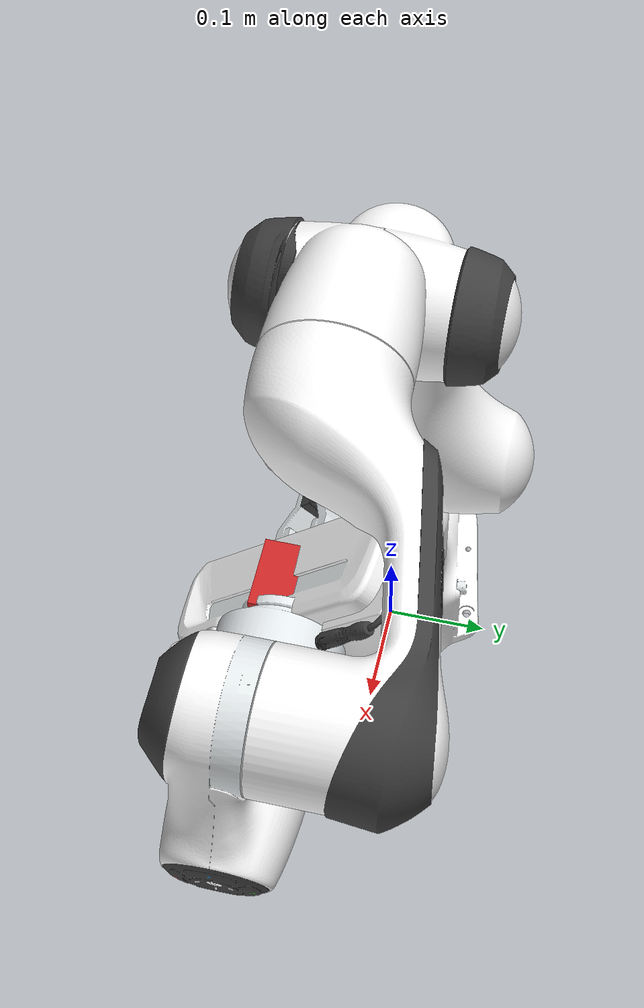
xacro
<?xml version="1.0"?>
<robot xmlns:xacro="http://www.ros.org/wiki/xacro" name="panda">
  <xacro:arg name="robot_name" default="panda"/>
  <xacro:arg name="load_gripper" default="true"/>
  <xacro:arg name="load_gazebo" default="false"/>
  <xacro:arg name="use_gazebo_control" default="false"/>
  <xacro:arg name="connected_to" default=""/> <!-- If using a different frame with ${connected_to} param, make sure 'world' frame exists in the TF tree -->

  <xacro:include filename="$(find welding_sim_gz)/robots/panda_arm_camera.xacro"/>

  <xacro:if value="$(arg load_gripper)">
    <xacro:include filename="$(find franka_panda_description)/robots/hand.xacro"/>
    <xacro:hand ns="panda" rpy="0 0 ${-pi/4}" connected_to="panda_link8"/>
  </xacro:if>

  <xacro:if value="$(arg load_gazebo)">
    <xacro:include filename="$(find welding_sim_gz)/robots/panda_camera.gazebo.xacro"/>
    <xacro:include filename="$(find franka_panda_description)/robots/panda.transmission.xacro"/>

    <xacro:panda_arm in_gazebo="true"  connected_to="$(arg connected_to)"/>
    <xacro:panda_gazebo robot_name="$(arg robot_name)" load_gripper="$(arg load_gripper)"/>
    <xacro:panda_transmission robot_name="$(arg robot_name)" load_gripper="$(arg load_gripper)" use_gazebo_control="$(arg use_gazebo_control)"/>
  </xacro:if>

  <xacro:unless value="$(arg load_gazebo)">
    <xacro:panda_arm />
  </xacro:unless>

</robot>

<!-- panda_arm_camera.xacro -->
<robot xmlns:xacro="http://www.ros.org/wiki/xacro" name="panda">
  <xacro:macro name="panda_arm" params="arm_id:='panda' description_pkg:='franka_panda_description' connected_to:='' in_gazebo='false' xyz:='0 0 0' rpy:='0 0 0'">
    <!-- If using custom frame with ${connected_to} param, make sure 'world' frame exists in its TF tree -->
    <xacro:if value="${connected_to == ''}">
      <link name="world" />
      <xacro:property name="base_frame_name" value="world"/>
    </xacro:if>
    <xacro:unless value="${connected_to == ''}">
      <xacro:property name="base_frame_name" value="${connected_to}"/>
    </xacro:unless>
    <joint name="${arm_id}_to_${base_frame_name}" type="fixed">
      <parent link="${base_frame_name}"/>
      <child link="${arm_id}_link0"/>
      <origin rpy="${rpy}" xyz="${xyz}"/>
      <xacro:unless value="${in_gazebo == 'false'}">
        <dynamics damping="1.0"/>
      </xacro:unless>
    </joint>
    <link name="${arm_id}_link0">
      <visual>
        <geometry>
          <mesh filename="package://${description_pkg}/meshes/visual/link0.dae"/>
        </geometry>
      </visual>
      <collision>
        <geometry>
          <mesh filename="package://${description_pkg}/meshes/collision/link0.stl"/>
        </geometry>
      </collision>
      <xacro:unless value="${in_gazebo == 'false'}">
        <inertial>
          <origin xyz="0 0 0" rpy="0 0 0"/>
          <mass value="3.06"/>
          <inertia ixx="0.3" ixy="0.0" ixz="0.0" iyy="0.3" iyz="0.0" izz="0.3"/>
        </inertial>
      </xacro:unless>
    </link>
    <link name="${arm_id}_link1">
      <visual>
        <geometry>
          <mesh filename="package://${description_pkg}/meshes/visual/link1.dae"/>
        </geometry>
      </visual>
      <collision>
        <geometry>
          <mesh filename="package://${description_pkg}/meshes/collision/link1.stl"/>
        </geometry>
      </collision>
      <inertial>
        <origin xyz="3.875e-03 2.081e-03 -0.1750" rpy="0 0 0"/>
        <mass value="4.970684"/>
        <inertia ixx="7.0337e-01" ixy="-1.3900e-04" ixz="6.7720e-03" iyy="7.0661e-01" iyz="1.9169e-02" izz="9.1170e-03"/>
      </inertial>
    </link>
    <joint name="${arm_id}_joint1" type="revolute">
      <safety_controller k_position="100.0" k_velocity="40.0" soft_lower_limit="-2.8973" soft_upper_limit="2.8973"/>
      <origin rpy="0 0 0" xyz="0 0 0.333"/>
      <parent link="${arm_id}_link0"/>
      <child link="${arm_id}_link1"/>
      <axis xyz="0 0 1"/>
      <limit effort="87" lower="-2.8973" upper="2.8973" velocity="2.1750"/>
      <dynamics damping="10.0" friction="5.0"/>
    </joint>
    <link name="${arm_id}_link2">
      <visual>
        <geometry>
          <mesh filename="package://${description_pkg}/meshes/visual/link2.dae"/>
        </geometry>
      </visual>
      <collision>
        <geometry>
          <mesh filename="package://${description_pkg}/meshes/collision/link2.stl"/>
        </geometry>
      </collision>
      <inertial>
        <origin xyz="-3.141e-03 -2.872e-02 3.495e-03" rpy="0 0 0"/>
        <mass value="0.646926"/>
        <inertia ixx="7.9620e-03" ixy="-3.9250e-03" ixz="1.0254e-02" iyy="2.8110e-02" iyz="7.0400e-04" izz="2.5995e-02"/>
      </inertial>
    </link>
    <joint name="${arm_id}_joint2" type="revolute">
      <safety_controller k_position="100.0" k_velocity="40.0" soft_lower_limit="-1.7628" soft_upper_limit="1.7628"/>
      <origin rpy="${-pi/2} 0 0" xyz="0 0 0"/>
      <parent link="${arm_id}_link1"/>
      <child link="${arm_id}_link2"/>
      <axis xyz="0 0 1"/>
      <limit effort="87" lower="-1.7628" upper="1.7628" velocity="2.1750"/>
      <dynamics damping="5.0" friction="2.0"/>
    </joint>
    <link name="${arm_id}_link3">
      <visual>
        <geometry>
          <mesh filename="package://${description_pkg}/meshes/visual/link3.dae"/>
        </geometry>
      </visual>
      <collision>
        <geometry>
          <mesh filename="package://${description_pkg}/meshes/collision/link3.stl"/>
        </geometry>
      </collision>
      <inertial>
        <origin xyz="2.7518e-02 3.9252e-02 -6.6502e-02" rpy="0 0 0"/>
        <mass value="3.228604"/>
        <inertia ixx="3.7242e-02" ixy="-4.7610e-03" ixz="-1.1396e-02" iyy="3.6155e-02" iyz="-1.2805e-02" izz="1.0830e-02"/>
      </inertial>
    </link>
    <joint name="${arm_id}_joint3" type="revolute">
      <safety_controller k_position="100.0" k_velocity="40.0" soft_lower_limit="-2.8973" soft_upper_limit="2.8973"/>
      <origin rpy="${pi/2} 0 0" xyz="0 -0.316 0"/>
      <parent link="${arm_id}_link2"/>
      <child link="${arm_id}_link3"/>
      <axis xyz="0 0 1"/>
      <limit effort="87" lower="-2.8973" upper="2.8973" velocity="2.1750"/>
      <dynamics damping="5.0" friction="2.0"/>
    </joint>
    <link name="${arm_id}_link4">
      <visual>
        <geometry>
          <mesh filename="package://${description_pkg}/meshes/visual/link4.dae"/>
        </geometry>
      </visual>
      <collision>
        <geometry>
          <mesh filename="package://${description_pkg}/meshes/collision/link4.stl"/>
        </geometry>
      </collision>
      <inertial>
        <origin xyz="-5.317e-02 1.04419e-01 2.7454e-02" rpy="0 0 0"/>
        <mass value="3.587895"/>
        <inertia ixx="2.5853e-02" ixy="7.7960e-03" ixz="-1.3320e-03" iyy="1.9552e-02" iyz="8.6410e-03" izz="2.8323e-02"/>
      </inertial>
    </link>
    <joint name="${arm_id}_joint4" type="revolute">
      <safety_controller k_position="100.0" k_velocity="40.0" soft_lower_limit="-3.0718" soft_upper_limit="-0.0698"/>
      <origin rpy="${pi/2} 0 0" xyz="0.0825 0 0"/>
      <parent link="${arm_id}_link3"/>
      <child link="${arm_id}_link4"/>
      <axis xyz="0 0 1"/>
      <limit effort="87" lower="-3.0718" upper="-0.0698" velocity="2.1750"/>
      <dynamics damping="1.0" friction="0.5"/>
    </joint>
    <link name="${arm_id}_link5">
      <visual>
        <geometry>
          <mesh filename="package://${description_pkg}/meshes/visual/link5.dae"/>
        </geometry>
      </visual>
      <collision>
        <geometry>
          <mesh filename="package://${description_pkg}/meshes/collision/link5.stl"/>
        </geometry>
      </collision>
      <inertial>
        <origin xyz="-1.1953e-02 4.1065e-02 -3.8437e-02" rpy="0 0 0"/>
        <mass value="1.225946"/>
        <inertia ixx="3.5549e-02" ixy="-2.1170e-03" ixz="-4.0370e-03" iyy="2.9474e-02" iyz="2.2900e-04" izz="8.6270e-03"/>
      </inertial>
    </link>
    <joint name="${arm_id}_joint5" type="revolute">
      <safety_controller k_position="100.0" k_velocity="40.0" soft_lower_limit="-2.8973" soft_upper_limit="2.8973"/>
      <origin rpy="${-pi/2} 0 0" xyz="-0.0825 0.384 0"/>
      <parent link="${arm_id}_link4"/>
      <child link="${arm_id}_link5"/>
      <axis xyz="0 0 1"/>
      <limit effort="12" lower="-2.8973" upper="2.8973" velocity="2.6100"/>
      <dynamics damping="2.0" friction="1.0"/>
    </joint>
    <link name="${arm_id}_link6">
      <visual>
        <geometry>
          <mesh filename="package://${description_pkg}/meshes/visual/link6.dae"/>
        </geometry>
      </visual>
      <collision>
        <geometry>
          <mesh filename="package://${description_pkg}/meshes/collision/link6.stl"/>
        </geometry>
      </collision>
      <inertial>
        <origin xyz="6.0149e-02 -1.4117e-02 -1.0517e-02" rpy="0 0 0"/>
        <mass value="1.666555"/>
        <inertia ixx="1.9640e-03" ixy="1.0900e-04" ixz="-1.1580e-03" iyy="4.3540e-03" iyz="3.4100e-04" izz="5.4330e-03"/>
      </inertial>
    </link>
    <joint name="${arm_id}_joint6" type="revolute">
      <safety_controller k_position="100.0" k_velocity="40.0" soft_lower_limit="-0.0175" soft_upper_limit="3.7525"/>
      <origin rpy="${pi/2} 0 0" xyz="0 0 0"/>
      <parent link="${arm_id}_link5"/>
      <child link="${arm_id}_link6"/>
      <axis xyz="0 0 1"/>
      <limit effort="12" lower="-0.0175" upper="3.7525" velocity="2.6100"/>
      <dynamics damping="1.0" friction="0.5"/>
    </joint>
    <link name="${arm_id}_link7">
      <visual>
        <geometry>
          <mesh filename="package://${description_pkg}/meshes/visual/link7.dae"/>
        </geometry>
      </visual>
      <collision>
        <geometry>
          <mesh filename="package://${description_pkg}/meshes/collision/link7.stl"/>
        </geometry>
      </collision>
      <inertial>
        <origin xyz="1.0517e-02 -4.252e-03 6.1597e-02" rpy="0 0 0"/>
        <mass value="7.35522e-01"/>
        <inertia ixx="1.2516e-02" ixy="-4.2800e-04" ixz="-1.1960e-03" iyy="1.0027e-02" iyz="-7.4100e-04" izz="4.8150e-03"/>
      </inertial>
    </link>
    <joint name="${arm_id}_joint7" type="revolute">
      <safety_controller k_position="100.0" k_velocity="40.0" soft_lower_limit="-2.8973" soft_upper_limit="2.8973"/>
      <origin rpy="${pi/2} 0 0" xyz="0.088 0 0"/>
      <parent link="${arm_id}_link6"/>
      <child link="${arm_id}_link7"/>
      <axis xyz="0 0 1"/>
      <limit effort="12" lower="-2.8973" upper="2.8973" velocity="2.6100"/>
      <dynamics damping="1.0" friction="0.5"/>
    </joint>
    <link name="${arm_id}_link8">
      <inertial>
        <origin xyz="0 0 0" rpy="0 0 0"/>
        <mass value="0.0"/>
        <inertia ixx="0.001" ixy="0.0" ixz="0.0" iyy="0.001" iyz="0.0" izz="0.001"/>
      </inertial>
    </link>
    <joint name="${arm_id}_joint8" type="fixed">
    <origin rpy="0 0 0" xyz="0 0 0.107"/>
      <parent link="${arm_id}_link7"/>
      <child link="${arm_id}_link8"/>
      <axis xyz="0 0 0"/>
    </joint>

    <joint name="camera_joint" type="fixed">
      <axis xyz="0 0 0" />
      <origin xyz="0 0 0.025" rpy="0 ${-pi/2} 0"/>
      <parent link="${arm_id}_link8"/>
      <child link="camera_link"/>
    </joint>

    <!-- Camera -->
    <link name="camera_link">
      <visual>
        <origin xyz="0 0 0" rpy="0 0 0"/>
        <geometry>
          <box size="0.05 0.05 0.05"/>
        </geometry>
        <material name="red"/>
      </visual>
    </link>

    <!-- generate an optical frame http://www.ros.org/reps/rep-0103.html#suffix-frames
        so that ros and opencv can operate on the camera frame correctly -->
    <joint name="camera_optical_joint" type="fixed">
      <!-- these values have to be these values otherwise the gazebo camera image
          won't be aligned properly with the frame it is supposedly originating from -->
      <origin xyz="0 0 0" rpy="${-pi/2} 0 ${-pi/2}"/>
      <parent link="camera_link"/>
      <child link="camera_link_optical"/>
    </joint>

    <link name="camera_link_optical">
    </link>

  </xacro:macro>
</robot>

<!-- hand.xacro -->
<robot xmlns:xacro="http://www.ros.org/wiki/xacro" name="hand">
  <xacro:macro name="hand" params="connected_to:='' ns:='' rpy:='0 0 0' xyz:='0 0 0' ">
    <xacro:unless value="${connected_to == ''}">
      <joint name="${ns}_hand_joint" type="fixed">
        <parent link="${connected_to}"/>
        <child link="${ns}_hand"/>
        <origin xyz="${xyz}" rpy="${rpy}"/>
      </joint>
    </xacro:unless>
    <link name="${ns}_hand">
      <visual>
        <geometry>
          <mesh filename="package://franka_panda_description/meshes/visual/hand.dae"/>
        </geometry>
      </visual>
      <collision>
        <geometry>
          <mesh filename="package://franka_panda_description/meshes/collision/hand.stl"/>
        </geometry>
      </collision>
      <inertial>
        <origin rpy="0 0 0" xyz="0 0.0015244 0.0275912"/>
        <mass value="0.73"/>
        <inertia ixx="0.00278560230025" ixy="0.0" ixz="0.0" iyy="0.000400033405336" iyz="0.0" izz="0.00256378041832"/>
      </inertial>
    </link>
    <link name="${ns}_leftfinger">
      <visual>
        <geometry>
          <mesh filename="package://franka_panda_description/meshes/visual/finger.dae"/>
        </geometry>
      </visual>
      <collision>
        <geometry>
          <mesh filename="package://franka_panda_description/meshes/collision/finger.stl"/>
        </geometry>
      </collision>
      <inertial>
        <origin rpy="0 0 0" xyz="0 0.0145644 0.0227941"/>
        <mass value="0.1"/>
        <inertia ixx="3.01220925051e-05" ixy="0.0" ixz="0.0" iyy="2.95873808038e-05" iyz="0.0" izz="6.95125211657e-06"/>
      </inertial>
    </link>
    <link name="${ns}_rightfinger">
      <visual>
        <origin xyz="0 0 0" rpy="0 0 ${pi}"/>
        <geometry>
          <mesh filename="package://franka_panda_description/meshes/visual/finger.dae"/>
        </geometry>
      </visual>
      <collision>
        <origin xyz="0 0 0" rpy="0 0 ${pi}"/>
        <geometry>
          <mesh filename="package://franka_panda_description/meshes/collision/finger.stl"/>
        </geometry>
      </collision>
      <inertial>
        <origin rpy="0 0 3.141592653589793" xyz="0 -0.0145644 0.0227941"/>
        <mass value="0.1"/>
        <inertia ixx="3.01220925051e-05" ixy="0.0" ixz="0.0" iyy="2.95873808038e-05" iyz="0.0" izz="6.95125211657e-06"/>
      </inertial>
    </link>
    <joint name="${ns}_finger_joint1" type="prismatic">
      <parent link="${ns}_hand"/>
      <child link="${ns}_leftfinger"/>
      <origin xyz="0 0 0.0584" rpy="0 0 0"/>
      <axis xyz="0 1 0"/>
      <limit effort="20" lower="0.0" upper="0.04" velocity="0.2"/>
      <dynamics damping="500.0" friction="0.0"/>
    </joint>
    <joint name="${ns}_finger_joint2" type="prismatic">
      <parent link="${ns}_hand"/>
      <child link="${ns}_rightfinger"/>
      <origin xyz="0 0 0.0584" rpy="0 0 0"/>
      <axis xyz="0 -1 0"/>
      <limit effort="20" lower="0.0" upper="0.04" velocity="0.2"/>
      <dynamics damping="500.0" friction="0.0"/>
      <mimic joint="${ns}_finger_joint1" />
    </joint>
  </xacro:macro>
</robot>
